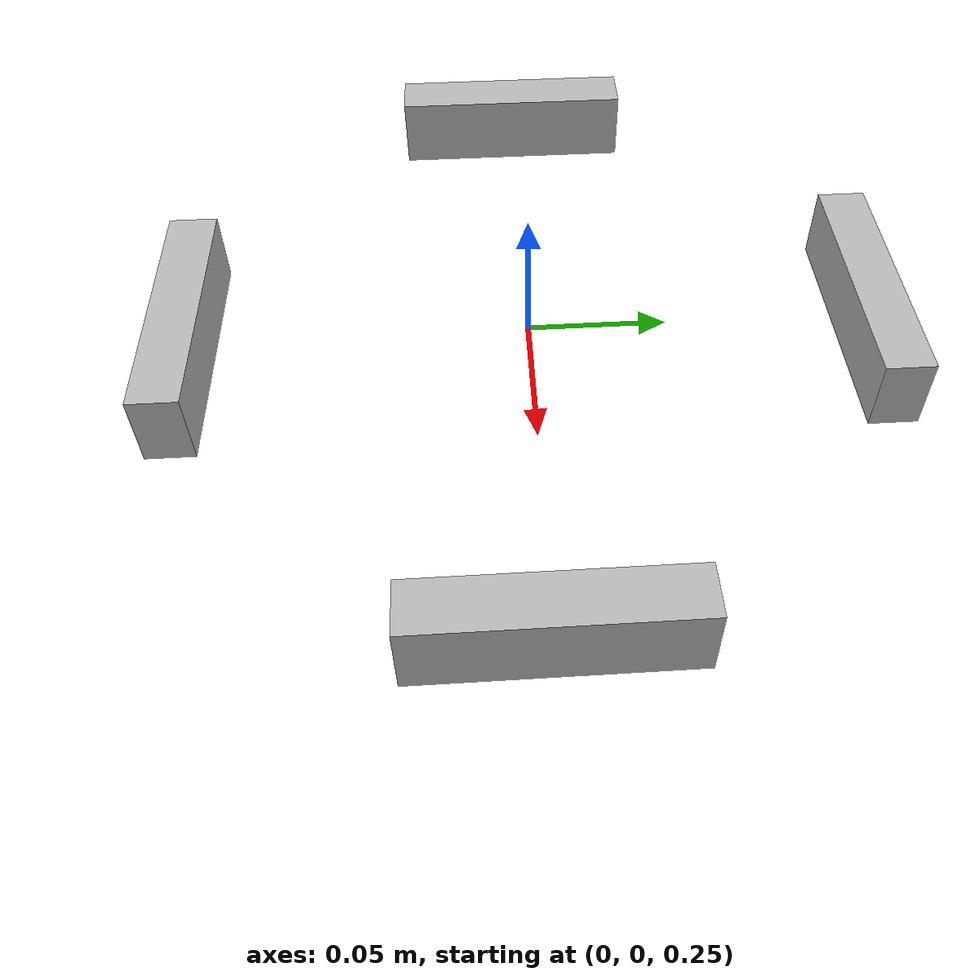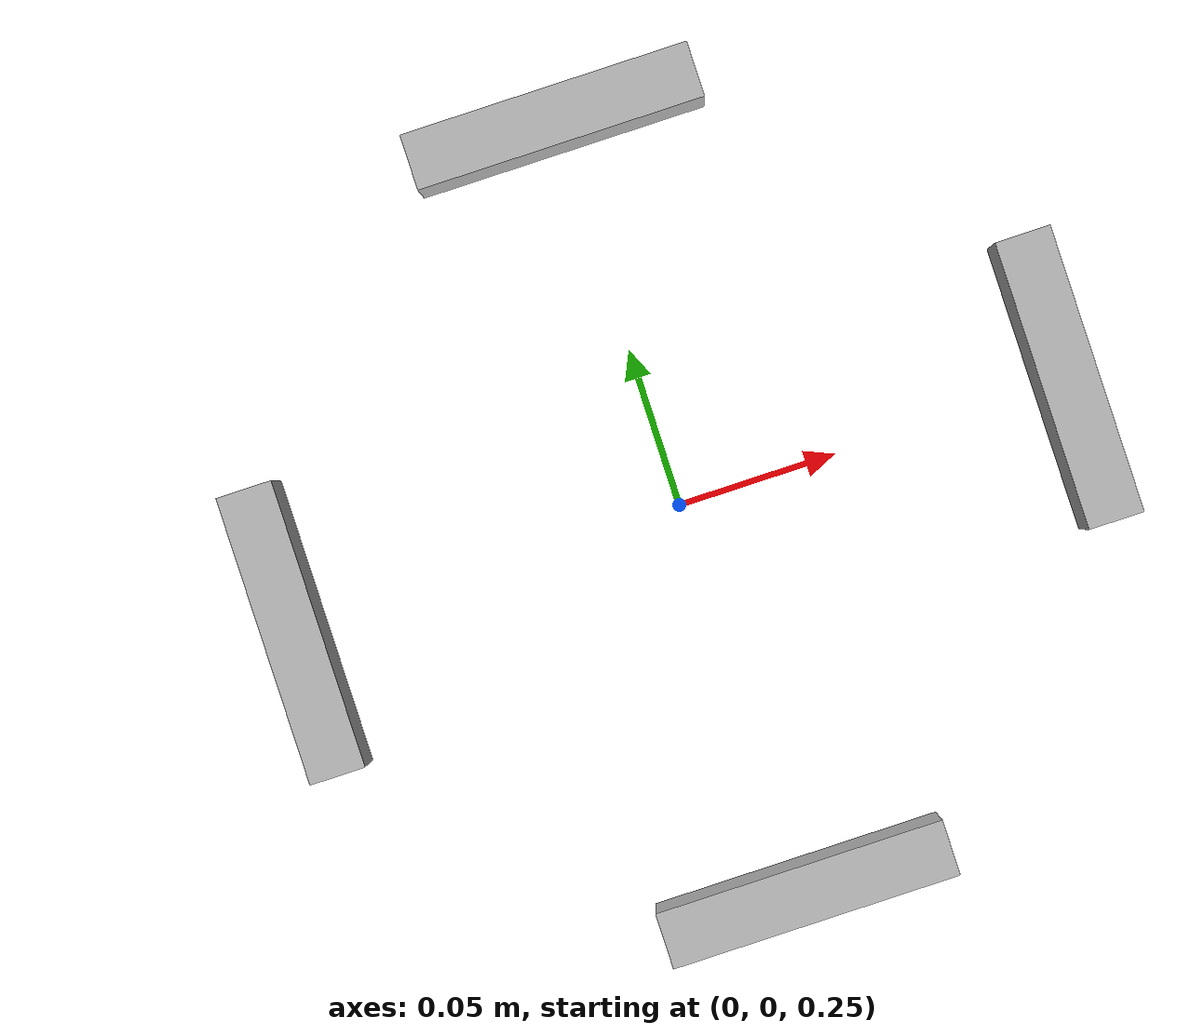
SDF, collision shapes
<?xml version="1.0" encoding="UTF-8"?>
<sdf version="1.9">
  <model name="OakD-Lite">
    <pose>0 0 0 0 0 0</pose>
    <self_collide>false</self_collide>
    <static>false</static>

    <!-- ROOT VIRTUALE: massa/inerzia quasi nulle -->
    <link name="camera_mount">
      <inertial>
        <mass>0.0001</mass>
        <inertia>
          <ixx>1e-6</ixx><ixy>0</ixy><ixz>0</ixz>
          <iyy>1e-6</iyy><iyz>0</iyz>
          <izz>1e-6</izz>
        </inertia>
      </inertial>
    </link>

    <!-- CAMERA FRONT: inerzia "reale" + mesh/collision se vuoi -->
    <link name="camera_link_front">
      <inertial>
        <pose>0.12358 0 0.256 0 0 0</pose>
        <mass>0.061</mass>
        <inertia>
          <ixx>0.0000460804</ixx>
          <ixy>0</ixy>
          <ixz>0</ixz>
          <iyy>0.0000055421</iyy>
          <iyz>0</iyz>
          <izz>0.0000436519</izz>
        </inertia>
      </inertial>

      <visual name="oakd_front_visual">
        <pose>0.12 0.03 0.242 0 0 0</pose>
        <geometry>
          <mesh>
            <scale>1 1 1</scale>
            <uri>model://OakD-Lite/meshes/OakDLite.dae</uri>
          </mesh>
        </geometry>
      </visual>

      <collision name="oakd_front_collision">
        <pose>0.12358 0 0.256 0 0 0</pose>
        <geometry>
          <box><size>0.0175 0.091 0.028</size></box>
        </geometry>
      </collision>

      <sensor name="IMX214_front" type="camera">
        <pose>0.12358 0 0.256 0 0 0</pose>
        <camera>
          <horizontal_fov>1.204</horizontal_fov>
          <image><width>1920</width><height>1080</height></image>
          <clip><near>0.1</near><far>100</far></clip>
        </camera>
        <always_on>1</always_on>
        <update_rate>30</update_rate>
        <visualize>true</visualize>
      </sensor>

      <sensor name="StereoOV7251_front" type="depth_camera">
        <pose>0.12358 0 0.256 0 0 0</pose>
        <camera>
          <horizontal_fov>1.274</horizontal_fov>
          <image>
            <width>640</width><height>480</height><format>R_FLOAT32</format>
          </image>
          <clip><near>0.2</near><far>19.1</far></clip>
        </camera>
        <always_on>1</always_on>
        <update_rate>30</update_rate>
        <visualize>true</visualize>
        <topic>depth_camera_front</topic>
      </sensor>
    </link>

    <!-- CAMERA RIGHT: inerzia "reale" + mesh/collision se vuoi -->
    <link name="camera_link_right">
      <inertial>
        <pose>0 -0.12358 0.256 0 0 -1.570796</pose>
        <mass>0.061</mass>
        <inertia>
          <ixx>0.0000460804</ixx>
          <ixy>0</ixy>
          <ixz>0</ixz>
          <iyy>0.0000055421</iyy>
          <iyz>0</iyz>
          <izz>0.0000436519</izz>
        </inertia>
      </inertial>

      <visual name="oakd_right_visual">
        <pose>0.03 -0.12 0.242 0 0 -1.570796</pose>
        <geometry>
          <mesh>
            <scale>1 1 1</scale>
            <uri>model://OakD-Lite/meshes/OakDLite.dae</uri>
          </mesh>
        </geometry>
      </visual>

      <collision name="oakd_right_collision">
        <pose>0 -0.12358 0.256 0 0 -1.570796</pose>
        <geometry>
          <box><size>0.0175 0.091 0.028</size></box>
        </geometry>
      </collision>

      <sensor name="IMX214_right" type="camera">
        <pose>0 -0.12358 0.256 0 0 -1.570796</pose>
        <camera>
          <horizontal_fov>1.204</horizontal_fov>
          <image><width>1920</width><height>1080</height></image>
          <clip><near>0.1</near><far>100</far></clip>
        </camera>
        <always_on>1</always_on>
        <update_rate>30</update_rate>
        <visualize>true</visualize>
      </sensor>

      <sensor name="StereoOV7251_right" type="depth_camera">
        <pose>0 -0.12358 0.256 0 0 -1.570796</pose>
        <camera>
          <horizontal_fov>1.274</horizontal_fov>
          <image>
            <width>640</width><height>480</height><format>R_FLOAT32</format>
          </image>
          <clip><near>0.2</near><far>19.1</far></clip>
        </camera>
        <always_on>1</always_on>
        <update_rate>30</update_rate>
        <visualize>true</visualize>
        <topic>depth_camera_right</topic>
      </sensor>
    </link>

    <!-- CAMERA LEFT: inerzia "reale" + mesh/collision se vuoi -->
    <link name="camera_link_left">
      <inertial>
        <pose>0 0.12358 0.256 0 0 1.570796</pose>
        <mass>0.061</mass>
        <inertia>
          <ixx>0.0000460804</ixx>
          <ixy>0</ixy>
          <ixz>0</ixz>
          <iyy>0.0000055421</iyy>
          <iyz>0</iyz>
          <izz>0.0000436519</izz>
        </inertia>
      </inertial>

      <visual name="oakd_left_visual">
        <pose>-0.03 0.12 0.242 0 0 1.570796</pose>
        <geometry>
          <mesh>
            <scale>1 1 1</scale>
            <uri>model://OakD-Lite/meshes/OakDLite.dae</uri>
          </mesh>
        </geometry>
      </visual>

      <collision name="oakd_left_collision">
        <pose>0 0.12358 0.256 0 0 1.570796</pose>
        <geometry>
          <box><size>0.0175 0.091 0.028</size></box>
        </geometry>
      </collision>

      <sensor name="IMX214_left" type="camera">
        <pose>0 0.12358 0.256 0 0 1.570796</pose>
        <camera>
          <horizontal_fov>1.204</horizontal_fov>
          <image><width>1920</width><height>1080</height></image>
          <clip><near>0.1</near><far>100</far></clip>
        </camera>
        <always_on>1</always_on>
        <update_rate>30</update_rate>
        <visualize>true</visualize>
      </sensor>

      <sensor name="StereoOV7251_left" type="depth_camera">
        <pose>0 0.12358 0.256 0 0 1.570796</pose>
        <camera>
          <horizontal_fov>1.274</horizontal_fov>
          <image>
            <width>640</width><height>480</height><format>R_FLOAT32</format>
          </image>
          <clip><near>0.2</near><far>19.1</far></clip>
        </camera>
        <always_on>1</always_on>
        <update_rate>30</update_rate>
        <visualize>true</visualize>
        <topic>depth_camera_left</topic>
      </sensor>
    </link>

    <!-- CAMERA REAR: inerzia "reale" + mesh/collision se vuoi -->
    <link name="camera_link_rear">
      <inertial>
        <pose>-0.12358 0 0.256 0 0 3.14159</pose>
        <mass>0.061</mass>
        <inertia>
          <ixx>0.0000460804</ixx>
          <ixy>0</ixy>
          <ixz>0</ixz>
          <iyy>0.0000055421</iyy>
          <iyz>0</iyz>
          <izz>0.0000436519</izz>
        </inertia>
      </inertial>

      <visual name="oakd_rear_visual">
        <pose>-0.12 -0.03 0.242 0 0 3.14159</pose>
        <geometry>
          <mesh>
            <scale>1 1 1</scale>
            <uri>model://OakD-Lite/meshes/OakDLite.dae</uri>
          </mesh>
        </geometry>
      </visual>

      <collision name="oakd_rear_collision">
        <pose>-0.12358 0 0.256 0 0 3.14159</pose>
        <geometry>
          <box><size>0.0175 0.091 0.028</size></box>
        </geometry>
      </collision>

      <sensor name="IMX214_rear" type="camera">
        <pose>-0.12358 0 0.256 0 0 3.14159</pose>
        <camera>
          <horizontal_fov>1.204</horizontal_fov>
          <image><width>1920</width><height>1080</height></image>
          <clip><near>0.1</near><far>100</far></clip>
        </camera>
        <always_on>1</always_on>
        <update_rate>30</update_rate>
        <visualize>true</visualize>
      </sensor>

      <sensor name="StereoOV7251_rear" type="depth_camera">
        <pose>-0.12358 0 0.256 0 0 3.14159</pose>
        <camera>
          <horizontal_fov>1.274</horizontal_fov>
          <image>
            <width>640</width><height>480</height><format>R_FLOAT32</format>
          </image>
          <clip><near>0.2</near><far>19.1</far></clip>
        </camera>
        <always_on>1</always_on>
        <update_rate>30</update_rate>
        <visualize>true</visualize>
        <topic>depth_camera_rear</topic>
      </sensor>
    </link>

    <!-- JOINT: mount -> front -->
    <joint name="mount_to_front" type="fixed">
      <parent>camera_mount</parent>
      <child>camera_link_front</child>
      <!-- posa del front rispetto al mount (se mount è al “centro”, qui metti offset) -->
      <pose relative_to="camera_mount">.12 .03 0.242 0 0 0</pose>
    </joint>

    <!-- JOINT: mount -> right -->
    <joint name="mount_to_right" type="fixed">
      <parent>camera_mount</parent>
      <child>camera_link_right</child>
      <!-- yaw -90° per guardare a destra -->
      <pose relative_to="camera_mount">0.03 -0.12 0.242 0 0 -1.570796</pose>
    </joint>

    <!-- JOINT: mount -> left -->
    <joint name="mount_to_left" type="fixed">
      <parent>camera_mount</parent>
      <child>camera_link_left</child>
      <pose relative_to="camera_mount">-0.03 0.12 0.242 0 0 1.570796</pose>
    </joint>

    <!-- JOINT: mount -> rear -->
    <joint name="mount_to_rear" type="fixed">
      <parent>camera_mount</parent>
      <child>camera_link_rear</child>
      <pose relative_to="camera_mount">-0.12 -0.03 0.242 0 0 3.14159</pose>
    </joint>

  </model>
</sdf>
